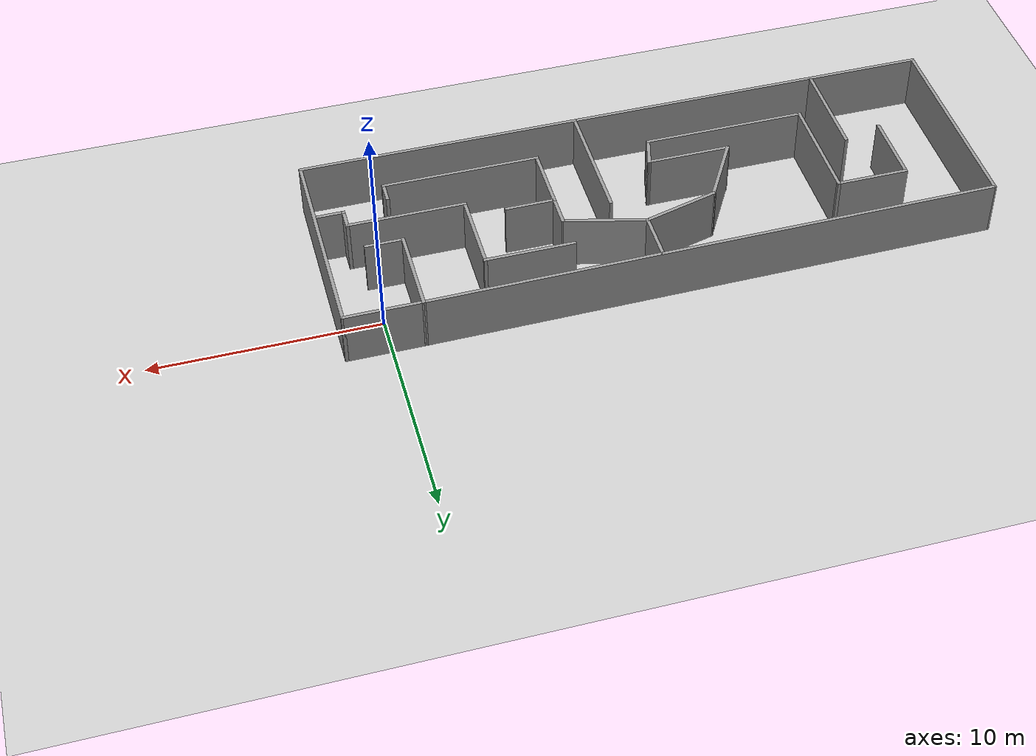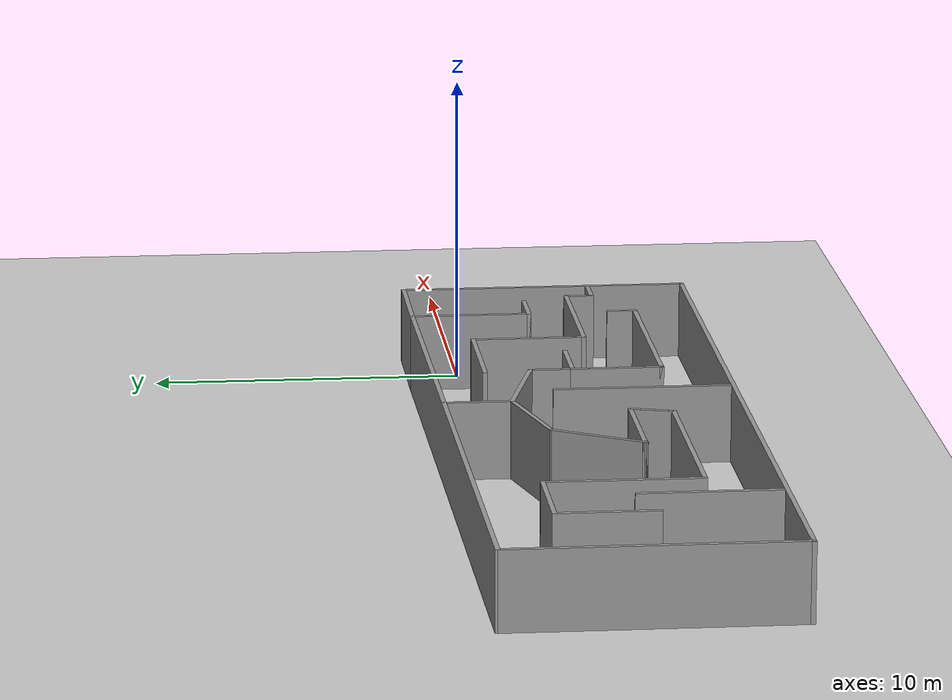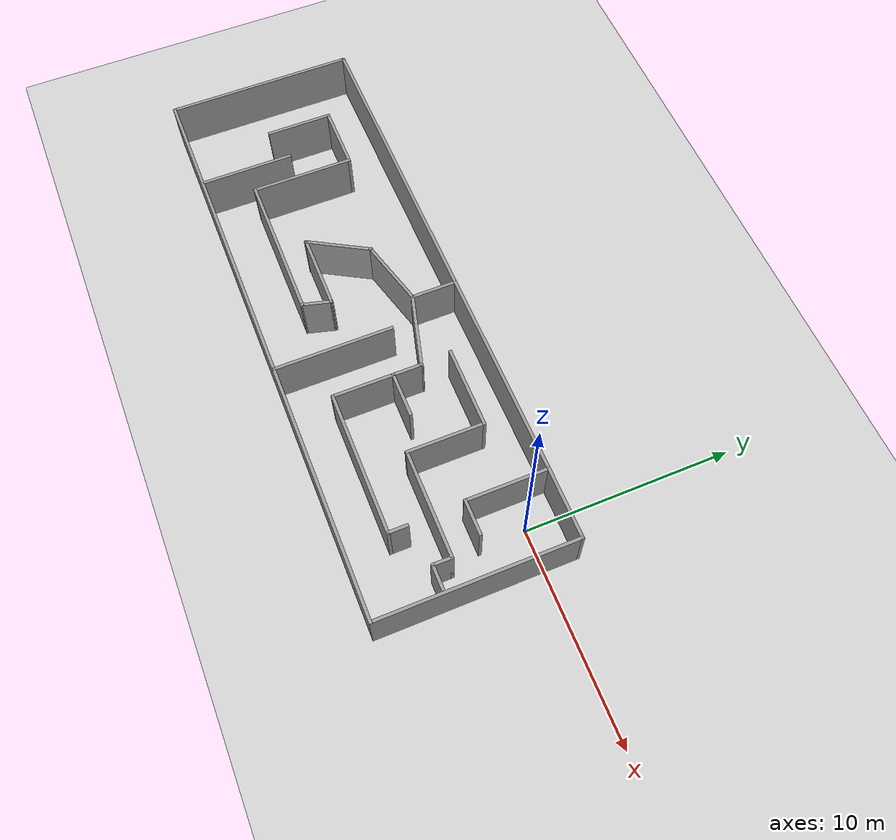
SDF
<sdf version="1.7">
 <world name="default">
  <model name="ground_plane">
   <static>1</static>
   <link name="link">
    <collision name="collision">
     <geometry><plane><normal>0 0 1</normal><size>100 100</size></plane></geometry>
     <surface>
      <contact><collide_bitmask>65535</collide_bitmask></contact>
      <friction><ode><mu>100</mu><mu2>50</mu2></ode></friction>
     </surface>
    </collision>
    <visual name="visual">
     <cast_shadows>0</cast_shadows>
     <geometry><plane><normal>0 0 1</normal><size>100 100</size></plane></geometry>
     <material>
      <script><uri>file://media/materials/scripts/gazebo.material</uri><name>Gazebo/Grey</name></script>
     </material>
    </visual>
   </link>
  </model>
  <model name="Untitled_0">
   <pose>-12.3738 -3.05876 0 0 -0 0</pose>
   <link name="Wall_0">
    <collision name="Wall_0_Collision">
     <geometry><box><size>9.25 0.15 2.5</size></box></geometry>
     <pose>0 0 1.25 0 -0 0</pose>
    </collision>
    <visual name="Wall_0_Visual">
     <pose>0 0 1.25 0 -0 0</pose>
     <geometry><box><size>9.25 0.15 2.5</size></box></geometry>
     <material>
      <script><uri>file://media/materials/scripts/gazebo.material</uri><name>Gazebo/Grey</name></script>
      <ambient>1 1 1 1</ambient>
     </material>
     <meta><layer>0</layer></meta>
    </visual>
    <pose>-14.2996 -0.125369 0 0 -0 -1.5708</pose>
   </link>
   <link name="Wall_1">
    <collision name="Wall_1_Collision">
     <geometry><box><size>28.75 0.15 2.5</size></box></geometry>
     <pose>0 0 1.25 0 -0 0</pose>
    </collision>
    <visual name="Wall_1_Visual">
     <pose>0 0 1.25 0 -0 0</pose>
     <geometry><box><size>28.75 0.15 2.5</size></box></geometry>
     <material>
      <script><uri>file://media/materials/scripts/gazebo.material</uri><name>Gazebo/Grey</name></script>
      <ambient>1 1 1 1</ambient>
     </material>
     <meta><layer>0</layer></meta>
    </visual>
    <pose>0.000369 -4.67537 0 0 -0 0</pose>
   </link>
   <link name="Wall_11">
    <collision name="Wall_11_Collision">
     <geometry><box><size>1 0.15 2.5</size></box></geometry>
     <pose>0 0 1.25 0 -0 0</pose>
    </collision>
    <visual name="Wall_11_Visual">
     <pose>0 0 1.25 0 -0 0</pose>
     <geometry><box><size>1 0.15 2.5</size></box></geometry>
     <material>
      <script><uri>file://media/materials/scripts/gazebo.material</uri><name>Gazebo/Grey</name></script>
      <ambient>1 1 1 1</ambient>
     </material>
     <meta><layer>0</layer></meta>
    </visual>
    <pose>13.0407 -1.06597 0 0 -0 -1.5708</pose>
   </link>
   <link name="Wall_12">
    <collision name="Wall_12_Collision">
     <geometry><box><size>1.25 0.15 2.5</size></box></geometry>
     <pose>0 0 1.25 0 -0 0</pose>
    </collision>
    <visual name="Wall_12_Visual">
     <pose>0 0 1.25 0 -0 0</pose>
     <geometry><box><size>1.25 0.15 2.5</size></box></geometry>
     <material>
      <script><uri>file://media/materials/scripts/gazebo.material</uri><name>Gazebo/Grey</name></script>
      <ambient>1 1 1 1</ambient>
     </material>
     <meta><layer>0</layer></meta>
    </visual>
    <pose>13.5907 -1.49097 0 0 -0 0</pose>
   </link>
   <link name="Wall_14">
    <collision name="Wall_14_Collision">
     <geometry><box><size>1 0.15 2.5</size></box></geometry>
     <pose>0 0 1.25 0 -0 0</pose>
    </collision>
    <visual name="Wall_14_Visual">
     <pose>0 0 1.25 0 -0 0</pose>
     <geometry><box><size>1 0.15 2.5</size></box></geometry>
     <material>
      <script><uri>file://media/materials/scripts/gazebo.material</uri><name>Gazebo/Grey</name></script>
      <ambient>1 1 1 1</ambient>
     </material>
     <meta><layer>0</layer></meta>
    </visual>
    <pose>11.0515 -2.26876 0 0 -0 -1.5708</pose>
   </link>
   <link name="Wall_15">
    <collision name="Wall_15_Collision">
     <geometry><box><size>7 0.15 2.5</size></box></geometry>
     <pose>0 0 1.25 0 -0 0</pose>
    </collision>
    <visual name="Wall_15_Visual">
     <pose>0 0 1.25 0 -0 0</pose>
     <geometry><box><size>7 0.15 2.5</size></box></geometry>
     <material>
      <script><uri>file://media/materials/scripts/gazebo.material</uri><name>Gazebo/Grey</name></script>
      <ambient>1 1 1 1</ambient>
     </material>
     <meta><layer>0</layer></meta>
    </visual>
    <pose>7.62652 -2.69376 0 0 -0 3.14159</pose>
   </link>
   <link name="Wall_16">
    <collision name="Wall_16_Collision">
     <geometry><box><size>3 0.15 2.5</size></box></geometry>
     <pose>0 0 1.25 0 -0 0</pose>
    </collision>
    <visual name="Wall_16_Visual">
     <pose>0 0 1.25 0 -0 0</pose>
     <geometry><box><size>3 0.15 2.5</size></box></geometry>
     <material>
      <script><uri>file://media/materials/scripts/gazebo.material</uri><name>Gazebo/Grey</name></script>
      <ambient>1 1 1 1</ambient>
     </material>
     <meta><layer>0</layer></meta>
    </visual>
    <pose>4.20151 -1.26876 0 0 -0 1.5708</pose>
   </link>
   <link name="Wall_17">
    <collision name="Wall_17_Collision">
     <geometry><box><size>2.25 0.15 2.5</size></box></geometry>
     <pose>0 0 1.25 0 -0 0</pose>
    </collision>
    <visual name="Wall_17_Visual">
     <pose>0 0 1.25 0 -0 0</pose>
     <geometry><box><size>2.25 0.15 2.5</size></box></geometry>
     <material>
      <script><uri>file://media/materials/scripts/gazebo.material</uri><name>Gazebo/Grey</name></script>
      <ambient>1 1 1 1</ambient>
     </material>
     <meta><layer>0</layer></meta>
    </visual>
    <pose>5.25152 0.156236 0 0 -0 0</pose>
   </link>
   <link name="Wall_2">
    <collision name="Wall_2_Collision">
     <geometry><box><size>9.5 0.15 2.5</size></box></geometry>
     <pose>0 0 1.25 0 -0 0</pose>
    </collision>
    <visual name="Wall_2_Visual">
     <pose>0 0 1.25 0 -0 0</pose>
     <geometry><box><size>9.5 0.15 2.5</size></box></geometry>
     <material>
      <script><uri>file://media/materials/scripts/gazebo.material</uri><name>Gazebo/Grey</name></script>
      <ambient>1 1 1 1</ambient>
     </material>
     <meta><layer>0</layer></meta>
    </visual>
    <pose>14.3004 -0.000369 0 0 -0 1.5708</pose>
   </link>
   <link name="Wall_20">
    <collision name="Wall_20_Collision">
     <geometry><box><size>5.75 0.15 2.5</size></box></geometry>
     <pose>0 0 1.25 0 -0 0</pose>
    </collision>
    <visual name="Wall_20_Visual">
     <pose>0 0 1.25 0 -0 0</pose>
     <geometry><box><size>5.75 0.15 2.5</size></box></geometry>
     <material>
      <script><uri>file://media/materials/scripts/gazebo.material</uri><name>Gazebo/Grey</name></script>
      <ambient>1 1 1 1</ambient>
     </material>
     <meta><layer>0</layer></meta>
    </visual>
    <pose>1.91492 -1.84257 0 0 -0 1.5708</pose>
   </link>
   <link name="Wall_23">
    <collision name="Wall_23_Collision">
     <geometry><box><size>1.5 0.15 2.5</size></box></geometry>
     <pose>0 0 1.25 0 -0 0</pose>
    </collision>
    <visual name="Wall_23_Visual">
     <pose>0 0 1.25 0 -0 0</pose>
     <geometry><box><size>1.5 0.15 2.5</size></box></geometry>
     <material>
      <script><uri>file://media/materials/scripts/gazebo.material</uri><name>Gazebo/Grey</name></script>
      <ambient>1 1 1 1</ambient>
     </material>
     <meta><layer>0</layer></meta>
    </visual>
    <pose>4.20151 0.831236 0 0 -0 1.5708</pose>
   </link>
   <link name="Wall_24">
    <collision name="Wall_24_Collision">
     <geometry><box><size>3.75 0.15 2.5</size></box></geometry>
     <pose>0 0 1.25 0 -0 0</pose>
    </collision>
    <visual name="Wall_24_Visual">
     <pose>0 0 1.25 0 -0 0</pose>
     <geometry><box><size>3.75 0.15 2.5</size></box></geometry>
     <material>
      <script><uri>file://media/materials/scripts/gazebo.material</uri><name>Gazebo/Grey</name></script>
      <ambient>1 1 1 1</ambient>
     </material>
     <meta><layer>0</layer></meta>
    </visual>
    <pose>2.46285 1.97211 0 0 -0 2.87979</pose>
   </link>
   <link name="Wall_25">
    <collision name="Wall_25_Collision">
     <geometry><box><size>3.5 0.15 2.5</size></box></geometry>
     <pose>0 0 1.25 0 -0 0</pose>
    </collision>
    <visual name="Wall_25_Visual">
     <pose>0 0 1.25 0 -0 0</pose>
     <geometry><box><size>3.5 0.15 2.5</size></box></geometry>
     <material>
      <script><uri>file://media/materials/scripts/gazebo.material</uri><name>Gazebo/Grey</name></script>
      <ambient>1 1 1 1</ambient>
     </material>
     <meta><layer>0</layer></meta>
    </visual>
    <pose>-0.893744 2.00446 0 0 -0 -2.87979</pose>
   </link>
   <link name="Wall_26">
    <collision name="Wall_26_Collision">
     <geometry><box><size>3.25 0.15 2.5</size></box></geometry>
     <pose>0 0 1.25 0 -0 0</pose>
    </collision>
    <visual name="Wall_26_Visual">
     <pose>0 0 1.25 0 -0 0</pose>
     <geometry><box><size>3.25 0.15 2.5</size></box></geometry>
     <material>
      <script><uri>file://media/materials/scripts/gazebo.material</uri><name>Gazebo/Grey</name></script>
      <ambient>1 1 1 1</ambient>
     </material>
     <meta><layer>0</layer></meta>
    </visual>
    <pose>-3.28667 0.228601 0 0 -0 -2.0944</pose>
   </link>
   <link name="Wall_27">
    <collision name="Wall_27_Collision">
     <geometry><box><size>3.75 0.15 2.5</size></box></geometry>
     <pose>0 0 1.25 0 -0 0</pose>
    </collision>
    <visual name="Wall_27_Visual">
     <pose>0 0 1.25 0 -0 0</pose>
     <geometry><box><size>3.75 0.15 2.5</size></box></geometry>
     <material>
      <script><uri>file://media/materials/scripts/gazebo.material</uri><name>Gazebo/Grey</name></script>
      <ambient>1 1 1 1</ambient>
     </material>
     <meta><layer>0</layer></meta>
    </visual>
    <pose>-2.26167 -1.11374 0 0 -0 0</pose>
   </link>
   <link name="Wall_28">
    <collision name="Wall_28_Collision">
     <geometry><box><size>1.5 0.15 2.5</size></box></geometry>
     <pose>0 0 1.25 0 -0 0</pose>
    </collision>
    <visual name="Wall_28_Visual">
     <pose>0 0 1.25 0 -0 0</pose>
     <geometry><box><size>1.5 0.15 2.5</size></box></geometry>
     <material>
      <script><uri>file://media/materials/scripts/gazebo.material</uri><name>Gazebo/Grey</name></script>
      <ambient>1 1 1 1</ambient>
     </material>
     <meta><layer>0</layer></meta>
    </visual>
    <pose>-0.636372 -1.76574 0 0 -0 -1.8326</pose>
   </link>
   <link name="Wall_29">
    <collision name="Wall_29_Collision">
     <geometry><box><size>7.25 0.15 2.5</size></box></geometry>
     <pose>0 0 1.25 0 -0 0</pose>
    </collision>
    <visual name="Wall_29_Visual">
     <pose>0 0 1.25 0 -0 0</pose>
     <geometry><box><size>7.25 0.15 2.5</size></box></geometry>
     <material>
      <script><uri>file://media/materials/scripts/gazebo.material</uri><name>Gazebo/Grey</name></script>
      <ambient>1 1 1 1</ambient>
     </material>
     <meta><layer>0</layer></meta>
    </visual>
    <pose>-4.36107 -2.41774 0 0 -0 3.14159</pose>
   </link>
   <link name="Wall_3">
    <collision name="Wall_3_Collision">
     <geometry><box><size>3.5 0.15 2.5</size></box></geometry>
     <pose>0 0 1.25 0 -0 0</pose>
    </collision>
    <visual name="Wall_3_Visual">
     <pose>0 0 1.25 0 -0 0</pose>
     <geometry><box><size>3.5 0.15 2.5</size></box></geometry>
     <material>
      <script><uri>file://media/materials/scripts/gazebo.material</uri><name>Gazebo/Grey</name></script>
      <ambient>1 1 1 1</ambient>
     </material>
     <meta><layer>0</layer></meta>
    </visual>
    <pose>12.6254 4.67463 0 0 -0 3.14159</pose>
   </link>
   <link name="Wall_30">
    <collision name="Wall_30_Collision">
     <geometry><box><size>5 0.15 2.5</size></box></geometry>
     <pose>0 0 1.25 0 -0 0</pose>
    </collision>
    <visual name="Wall_30_Visual">
     <pose>0 0 1.25 0 -0 0</pose>
     <geometry><box><size>5 0.15 2.5</size></box></geometry>
     <material>
      <script><uri>file://media/materials/scripts/gazebo.material</uri><name>Gazebo/Grey</name></script>
      <ambient>1 1 1 1</ambient>
     </material>
     <meta><layer>0</layer></meta>
    </visual>
    <pose>-7.91108 0.007262 0 0 -0 1.5708</pose>
   </link>
   <link name="Wall_31">
    <collision name="Wall_31_Collision">
     <geometry><box><size>3.25 0.15 2.5</size></box></geometry>
     <pose>0 0 1.25 0 -0 0</pose>
    </collision>
    <visual name="Wall_31_Visual">
     <pose>0 0 1.25 0 -0 0</pose>
     <geometry><box><size>3.25 0.15 2.5</size></box></geometry>
     <material>
      <script><uri>file://media/materials/scripts/gazebo.material</uri><name>Gazebo/Grey</name></script>
      <ambient>1 1 1 1</ambient>
     </material>
     <meta><layer>0</layer></meta>
    </visual>
    <pose>-9.46107 2.43226 0 0 -0 3.14159</pose>
   </link>
   <link name="Wall_32">
    <collision name="Wall_32_Collision">
     <geometry><box><size>3.25 0.15 2.5</size></box></geometry>
     <pose>0 0 1.25 0 -0 0</pose>
    </collision>
    <visual name="Wall_32_Visual">
     <pose>0 0 1.25 0 -0 0</pose>
     <geometry><box><size>3.25 0.15 2.5</size></box></geometry>
     <material>
      <script><uri>file://media/materials/scripts/gazebo.material</uri><name>Gazebo/Grey</name></script>
      <ambient>1 1 1 1</ambient>
     </material>
     <meta><layer>0</layer></meta>
    </visual>
    <pose>-11.0111 0.882262 0 0 -0 -1.5708</pose>
   </link>
   <link name="Wall_34">
    <collision name="Wall_34_Collision">
     <geometry><box><size>4.5 0.15 2.5</size></box></geometry>
     <pose>0 0 1.25 0 -0 0</pose>
    </collision>
    <visual name="Wall_34_Visual">
     <pose>0 0 1.25 0 -0 0</pose>
     <geometry><box><size>4.5 0.15 2.5</size></box></geometry>
     <material>
      <script><uri>file://media/materials/scripts/gazebo.material</uri><name>Gazebo/Grey</name></script>
      <ambient>1 1 1 1</ambient>
     </material>
     <meta><layer>0</layer></meta>
    </visual>
    <pose>-9.28029 -2.39962 0 0 -0 -1.5708</pose>
   </link>
   <link name="Wall_36">
    <collision name="Wall_36_Collision">
     <geometry><box><size>25.4012 0.15 2.5</size></box></geometry>
     <pose>0 0 1.25 0 -0 0</pose>
    </collision>
    <visual name="Wall_36_Visual">
     <pose>0 0 1.25 0 -0 0</pose>
     <geometry><box><size>25.4012 0.15 2.5</size></box></geometry>
     <material>
      <script><uri>file://media/materials/scripts/gazebo.material</uri><name>Gazebo/Grey</name></script>
      <ambient>1 1 1 1</ambient>
     </material>
     <meta><layer>0</layer></meta>
    </visual>
    <pose>-1.67463 4.54963 0 0 -0 0.009901</pose>
   </link>
   <link name="Wall_38">
    <collision name="Wall_38_Collision">
     <geometry><box><size>2.25 0.15 2.5</size></box></geometry>
     <pose>0 0 1.25 0 -0 0</pose>
    </collision>
    <visual name="Wall_38_Visual">
     <pose>0 0 1.25 0 -0 0</pose>
     <geometry><box><size>2.25 0.15 2.5</size></box></geometry>
     <material>
      <script><uri>file://media/materials/scripts/gazebo.material</uri><name>Gazebo/Grey</name></script>
      <ambient>1 1 1 1</ambient>
     </material>
     <meta><layer>0</layer></meta>
    </visual>
    <pose>0.724182 3.48799 0 0 -0 1.5708</pose>
   </link>
   <link name="Wall_4">
    <collision name="Wall_4_Collision">
     <geometry><box><size>4 0.15 2.5</size></box></geometry>
     <pose>0 0 1.25 0 -0 0</pose>
    </collision>
    <visual name="Wall_4_Visual">
     <pose>0 0 1.25 0 -0 0</pose>
     <geometry><box><size>4 0.15 2.5</size></box></geometry>
     <material>
      <script><uri>file://media/materials/scripts/gazebo.material</uri><name>Gazebo/Grey</name></script>
      <ambient>1 1 1 1</ambient>
     </material>
     <meta><layer>0</layer></meta>
    </visual>
    <pose>10.9504 2.74963 0 0 -0 -1.5708</pose>
   </link>
   <link name="Wall_5">
    <collision name="Wall_5_Collision">
     <geometry><box><size>1.75 0.15 2.5</size></box></geometry>
     <pose>0 0 1.25 0 -0 0</pose>
    </collision>
    <visual name="Wall_5_Visual">
     <pose>0 0 1.25 0 -0 0</pose>
     <geometry><box><size>1.75 0.15 2.5</size></box></geometry>
     <material>
      <script><uri>file://media/materials/scripts/gazebo.material</uri><name>Gazebo/Grey</name></script>
      <ambient>1 1 1 1</ambient>
     </material>
     <meta><layer>0</layer></meta>
    </visual>
    <pose>11.7504 0.824631 0 0 -0 0</pose>
   </link>
   <link name="Wall_7">
    <collision name="Wall_7_Collision">
     <geometry><box><size>5.25 0.15 2.5</size></box></geometry>
     <pose>0 0 1.25 0 -0 0</pose>
    </collision>
    <visual name="Wall_7_Visual">
     <pose>0 0 1.25 0 -0 0</pose>
     <geometry><box><size>5.25 0.15 2.5</size></box></geometry>
     <material>
      <script><uri>file://media/materials/scripts/gazebo.material</uri><name>Gazebo/Grey</name></script>
      <ambient>1 1 1 1</ambient>
     </material>
     <meta><layer>0</layer></meta>
    </visual>
    <pose>10.4907 -0.640972 0 0 -0 3.14159</pose>
   </link>
   <link name="Wall_8">
    <collision name="Wall_8_Collision">
     <geometry><box><size>3.75 0.15 2.5</size></box></geometry>
     <pose>0 0 1.25 0 -0 0</pose>
    </collision>
    <visual name="Wall_8_Visual">
     <pose>0 0 1.25 0 -0 0</pose>
     <geometry><box><size>3.75 0.15 2.5</size></box></geometry>
     <material>
      <script><uri>file://media/materials/scripts/gazebo.material</uri><name>Gazebo/Grey</name></script>
      <ambient>1 1 1 1</ambient>
     </material>
     <meta><layer>0</layer></meta>
    </visual>
    <pose>7.94075 1.15903 0 0 -0 1.5708</pose>
   </link>
   <link name="Wall_9">
    <collision name="Wall_9_Collision">
     <geometry><box><size>4 0.15 2.5</size></box></geometry>
     <pose>0 0 1.25 0 -0 0</pose>
    </collision>
    <visual name="Wall_9_Visual">
     <pose>0 0 1.25 0 -0 0</pose>
     <geometry><box><size>4 0.15 2.5</size></box></geometry>
     <material>
      <script><uri>file://media/materials/scripts/gazebo.material</uri><name>Gazebo/Grey</name></script>
      <ambient>1 1 1 1</ambient>
     </material>
     <meta><layer>0</layer></meta>
    </visual>
    <pose>6.01575 2.95903 0 0 -0 3.14159</pose>
   </link>
   <static>1</static>
  </model>
 </world>
</sdf>
